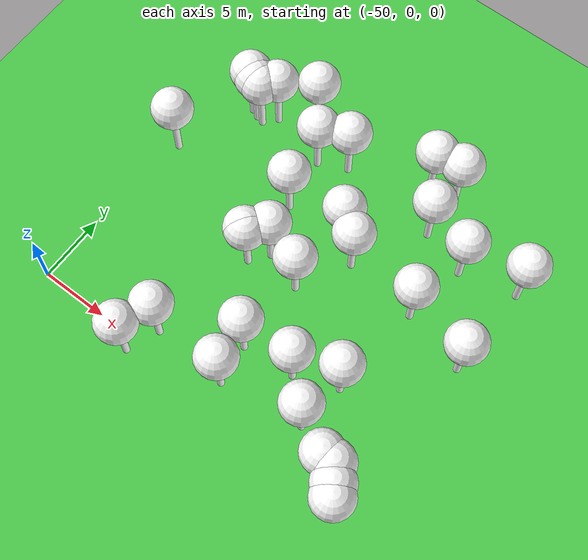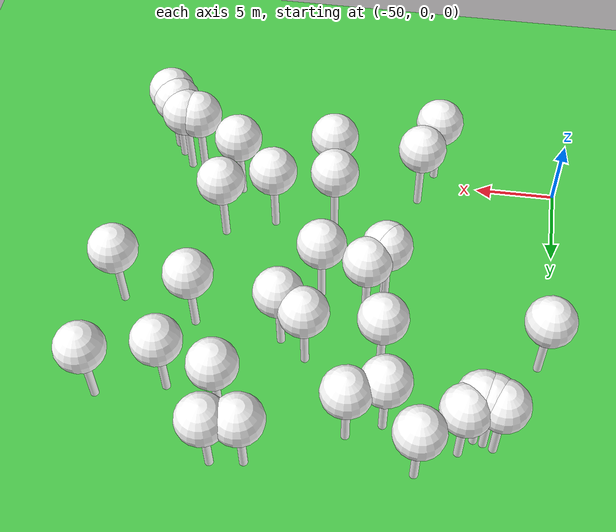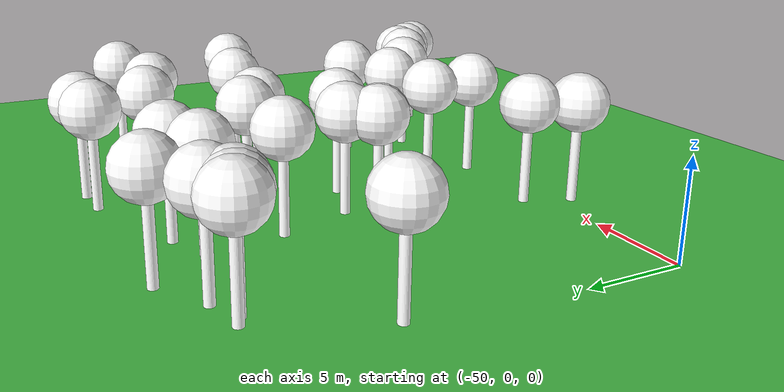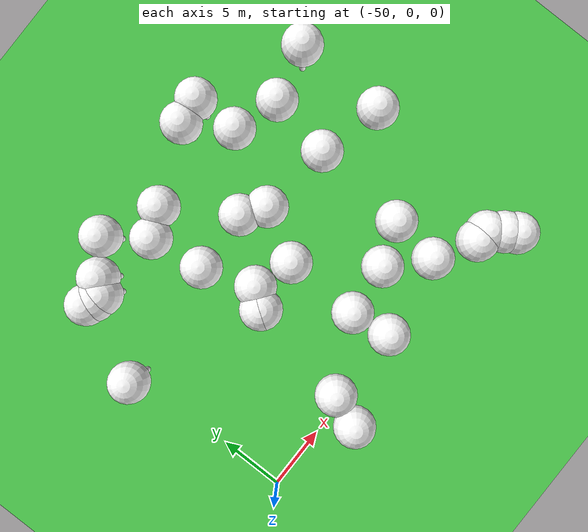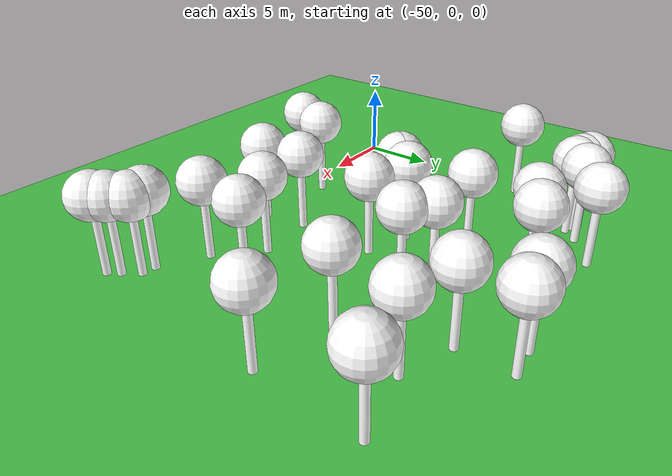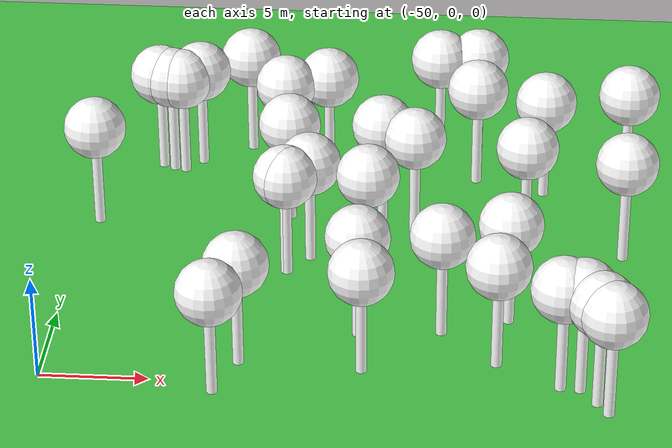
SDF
<sdf version="1.8">
 <world name="forest_world">
  <model name="tree_simple493">
   <static>1</static>
   <link name="link">
    <pose>0 0 0.1 0 -0 0</pose>
    <collision name="collision_trunk">
     <pose>0 0 2 0 -0 0</pose>
     <geometry><cylinder><radius>0.25</radius><length>4</length></cylinder></geometry>
    </collision>
    <collision name="collision_treetop">
     <pose>0 0 5.2 0 -0 0</pose>
     <geometry><sphere><radius>1.5</radius></sphere></geometry>
    </collision>
    <visual name="trunk_493">
     <pose>0 0 2 0 -0 0</pose>
     <geometry><cylinder><radius>0.25</radius><length>4</length></cylinder></geometry>
     <material>
      <ambient>0.5 0.5 0.5 1</ambient>
      <diffuse>1.0 1.0 1.0 1</diffuse>
      <specular>0.0 0.0 0.0 1</specular>
      <pbr>
       <metal>
        <albedo_map>file://textures/tree_simple_trunk.jpg</albedo_map>
        <metalness>0.0</metalness>
        <roughness>0.8</roughness>
       </metal>
      </pbr>
     </material>
    </visual>
    <visual name="treetop_493">
     <pose>0 0 5.2 0 -0 0</pose>
     <geometry><sphere><radius>1.5</radius></sphere></geometry>
     <material>
      <ambient>0.5 0.5 0.5 1</ambient>
      <diffuse>1.0 1.0 1.0 1</diffuse>
      <specular>0.0 0.0 0.0 1</specular>
      <pbr>
       <metal>
        <albedo_map>file://textures/tree_simple_treetop.jpg</albedo_map>
        <metalness>0.0</metalness>
        <roughness>0.9</roughness>
       </metal>
      </pbr>
     </material>
    </visual>
   </link>
   <pose>-30.9686104206 18.3944298941 0 0 -0 0</pose>
  </model>
  <model name="tree_simple476">
   <static>1</static>
   <link name="link">
    <pose>0 0 0.1 0 -0 0</pose>
    <collision name="collision_trunk">
     <pose>0 0 2 0 -0 0</pose>
     <geometry><cylinder><radius>0.25</radius><length>4</length></cylinder></geometry>
    </collision>
    <collision name="collision_treetop">
     <pose>0 0 5.2 0 -0 0</pose>
     <geometry><sphere><radius>1.5</radius></sphere></geometry>
    </collision>
    <visual name="trunk_476">
     <pose>0 0 2 0 -0 0</pose>
     <geometry><cylinder><radius>0.25</radius><length>4</length></cylinder></geometry>
     <material>
      <ambient>0.5 0.5 0.5 1</ambient>
      <diffuse>1.0 1.0 1.0 1</diffuse>
      <specular>0.0 0.0 0.0 1</specular>
      <pbr>
       <metal>
        <albedo_map>file://textures/tree_simple_trunk.jpg</albedo_map>
        <metalness>0.0</metalness>
        <roughness>0.8</roughness>
       </metal>
      </pbr>
     </material>
    </visual>
    <visual name="treetop_476">
     <pose>0 0 5.2 0 -0 0</pose>
     <geometry><sphere><radius>1.5</radius></sphere></geometry>
     <material>
      <ambient>0.5 0.5 0.5 1</ambient>
      <diffuse>1.0 1.0 1.0 1</diffuse>
      <specular>0.0 0.0 0.0 1</specular>
      <pbr>
       <metal>
        <albedo_map>file://textures/tree_simple_treetop.jpg</albedo_map>
        <metalness>0.0</metalness>
        <roughness>0.9</roughness>
       </metal>
      </pbr>
     </material>
    </visual>
   </link>
   <pose>-40.490555579 18.243153787 0 0 -0 0</pose>
  </model>
  <model name="tree_simple470">
   <static>1</static>
   <link name="link">
    <pose>0 0 0.1 0 -0 0</pose>
    <collision name="collision_trunk">
     <pose>0 0 2 0 -0 0</pose>
     <geometry><cylinder><radius>0.25</radius><length>4</length></cylinder></geometry>
    </collision>
    <collision name="collision_treetop">
     <pose>0 0 5.2 0 -0 0</pose>
     <geometry><sphere><radius>1.5</radius></sphere></geometry>
    </collision>
    <visual name="trunk_470">
     <pose>0 0 2 0 -0 0</pose>
     <geometry><cylinder><radius>0.25</radius><length>4</length></cylinder></geometry>
     <material>
      <ambient>0.5 0.5 0.5 1</ambient>
      <diffuse>1.0 1.0 1.0 1</diffuse>
      <specular>0.0 0.0 0.0 1</specular>
      <pbr>
       <metal>
        <albedo_map>file://textures/tree_simple_trunk.jpg</albedo_map>
        <metalness>0.0</metalness>
        <roughness>0.8</roughness>
       </metal>
      </pbr>
     </material>
    </visual>
    <visual name="treetop_470">
     <pose>0 0 5.2 0 -0 0</pose>
     <geometry><sphere><radius>1.5</radius></sphere></geometry>
     <material>
      <ambient>0.5 0.5 0.5 1</ambient>
      <diffuse>1.0 1.0 1.0 1</diffuse>
      <specular>0.0 0.0 0.0 1</specular>
      <pbr>
       <metal>
        <albedo_map>file://textures/tree_simple_treetop.jpg</albedo_map>
        <metalness>0.0</metalness>
        <roughness>0.9</roughness>
       </metal>
      </pbr>
     </material>
    </visual>
   </link>
   <pose>-42.5418923399 21.0598314505 0 0 -0 0</pose>
  </model>
  <model name="tree_simple467">
   <static>1</static>
   <link name="link">
    <pose>0 0 0.1 0 -0 0</pose>
    <collision name="collision_trunk">
     <pose>0 0 2 0 -0 0</pose>
     <geometry><cylinder><radius>0.25</radius><length>4</length></cylinder></geometry>
    </collision>
    <collision name="collision_treetop">
     <pose>0 0 5.2 0 -0 0</pose>
     <geometry><sphere><radius>1.5</radius></sphere></geometry>
    </collision>
    <visual name="trunk_467">
     <pose>0 0 2 0 -0 0</pose>
     <geometry><cylinder><radius>0.25</radius><length>4</length></cylinder></geometry>
     <material>
      <ambient>0.5 0.5 0.5 1</ambient>
      <diffuse>1.0 1.0 1.0 1</diffuse>
      <specular>0.0 0.0 0.0 1</specular>
      <pbr>
       <metal>
        <albedo_map>file://textures/tree_simple_trunk.jpg</albedo_map>
        <metalness>0.0</metalness>
        <roughness>0.8</roughness>
       </metal>
      </pbr>
     </material>
    </visual>
    <visual name="treetop_467">
     <pose>0 0 5.2 0 -0 0</pose>
     <geometry><sphere><radius>1.5</radius></sphere></geometry>
     <material>
      <ambient>0.5 0.5 0.5 1</ambient>
      <diffuse>1.0 1.0 1.0 1</diffuse>
      <specular>0.0 0.0 0.0 1</specular>
      <pbr>
       <metal>
        <albedo_map>file://textures/tree_simple_treetop.jpg</albedo_map>
        <metalness>0.0</metalness>
        <roughness>0.9</roughness>
       </metal>
      </pbr>
     </material>
    </visual>
   </link>
   <pose>-38.4435588212 19.1731926836 0 0 -0 0</pose>
  </model>
  <model name="tree_simple455">
   <static>1</static>
   <link name="link">
    <pose>0 0 0.1 0 -0 0</pose>
    <collision name="collision_trunk">
     <pose>0 0 2 0 -0 0</pose>
     <geometry><cylinder><radius>0.25</radius><length>4</length></cylinder></geometry>
    </collision>
    <collision name="collision_treetop">
     <pose>0 0 5.2 0 -0 0</pose>
     <geometry><sphere><radius>1.5</radius></sphere></geometry>
    </collision>
    <visual name="trunk_455">
     <pose>0 0 2 0 -0 0</pose>
     <geometry><cylinder><radius>0.25</radius><length>4</length></cylinder></geometry>
     <material>
      <ambient>0.5 0.5 0.5 1</ambient>
      <diffuse>1.0 1.0 1.0 1</diffuse>
      <specular>0.0 0.0 0.0 1</specular>
      <pbr>
       <metal>
        <albedo_map>file://textures/tree_simple_trunk.jpg</albedo_map>
        <metalness>0.0</metalness>
        <roughness>0.8</roughness>
       </metal>
      </pbr>
     </material>
    </visual>
    <visual name="treetop_455">
     <pose>0 0 5.2 0 -0 0</pose>
     <geometry><sphere><radius>1.5</radius></sphere></geometry>
     <material>
      <ambient>0.5 0.5 0.5 1</ambient>
      <diffuse>1.0 1.0 1.0 1</diffuse>
      <specular>0.0 0.0 0.0 1</specular>
      <pbr>
       <metal>
        <albedo_map>file://textures/tree_simple_treetop.jpg</albedo_map>
        <metalness>0.0</metalness>
        <roughness>0.9</roughness>
       </metal>
      </pbr>
     </material>
    </visual>
   </link>
   <pose>-32.1346913749 4.45623468988 0 0 -0 0</pose>
  </model>
  <model name="tree_simple448">
   <static>1</static>
   <link name="link">
    <pose>0 0 0.1 0 -0 0</pose>
    <collision name="collision_trunk">
     <pose>0 0 2 0 -0 0</pose>
     <geometry><cylinder><radius>0.25</radius><length>4</length></cylinder></geometry>
    </collision>
    <collision name="collision_treetop">
     <pose>0 0 5.2 0 -0 0</pose>
     <geometry><sphere><radius>1.5</radius></sphere></geometry>
    </collision>
    <visual name="trunk_448">
     <pose>0 0 2 0 -0 0</pose>
     <geometry><cylinder><radius>0.25</radius><length>4</length></cylinder></geometry>
     <material>
      <ambient>0.5 0.5 0.5 1</ambient>
      <diffuse>1.0 1.0 1.0 1</diffuse>
      <specular>0.0 0.0 0.0 1</specular>
      <pbr>
       <metal>
        <albedo_map>file://textures/tree_simple_trunk.jpg</albedo_map>
        <metalness>0.0</metalness>
        <roughness>0.8</roughness>
       </metal>
      </pbr>
     </material>
    </visual>
    <visual name="treetop_448">
     <pose>0 0 5.2 0 -0 0</pose>
     <geometry><sphere><radius>1.5</radius></sphere></geometry>
     <material>
      <ambient>0.5 0.5 0.5 1</ambient>
      <diffuse>1.0 1.0 1.0 1</diffuse>
      <specular>0.0 0.0 0.0 1</specular>
      <pbr>
       <metal>
        <albedo_map>file://textures/tree_simple_treetop.jpg</albedo_map>
        <metalness>0.0</metalness>
        <roughness>0.9</roughness>
       </metal>
      </pbr>
     </material>
    </visual>
   </link>
   <pose>-24.5519753109 -1.42546954192 0 0 -0 0</pose>
  </model>
  <model name="tree_simple444">
   <static>1</static>
   <link name="link">
    <pose>0 0 0.1 0 -0 0</pose>
    <collision name="collision_trunk">
     <pose>0 0 2 0 -0 0</pose>
     <geometry><cylinder><radius>0.25</radius><length>4</length></cylinder></geometry>
    </collision>
    <collision name="collision_treetop">
     <pose>0 0 5.2 0 -0 0</pose>
     <geometry><sphere><radius>1.5</radius></sphere></geometry>
    </collision>
    <visual name="trunk_444">
     <pose>0 0 2 0 -0 0</pose>
     <geometry><cylinder><radius>0.25</radius><length>4</length></cylinder></geometry>
     <material>
      <ambient>0.5 0.5 0.5 1</ambient>
      <diffuse>1.0 1.0 1.0 1</diffuse>
      <specular>0.0 0.0 0.0 1</specular>
      <pbr>
       <metal>
        <albedo_map>file://textures/tree_simple_trunk.jpg</albedo_map>
        <metalness>0.0</metalness>
        <roughness>0.8</roughness>
       </metal>
      </pbr>
     </material>
    </visual>
    <visual name="treetop_444">
     <pose>0 0 5.2 0 -0 0</pose>
     <geometry><sphere><radius>1.5</radius></sphere></geometry>
     <material>
      <ambient>0.5 0.5 0.5 1</ambient>
      <diffuse>1.0 1.0 1.0 1</diffuse>
      <specular>0.0 0.0 0.0 1</specular>
      <pbr>
       <metal>
        <albedo_map>file://textures/tree_simple_treetop.jpg</albedo_map>
        <metalness>0.0</metalness>
        <roughness>0.9</roughness>
       </metal>
      </pbr>
     </material>
    </visual>
   </link>
   <pose>-23.7375888222 11.4825776361 0 0 -0 0</pose>
  </model>
  <model name="tree_simple440">
   <static>1</static>
   <link name="link">
    <pose>0 0 0.1 0 -0 0</pose>
    <collision name="collision_trunk">
     <pose>0 0 2 0 -0 0</pose>
     <geometry><cylinder><radius>0.25</radius><length>4</length></cylinder></geometry>
    </collision>
    <collision name="collision_treetop">
     <pose>0 0 5.2 0 -0 0</pose>
     <geometry><sphere><radius>1.5</radius></sphere></geometry>
    </collision>
    <visual name="trunk_440">
     <pose>0 0 2 0 -0 0</pose>
     <geometry><cylinder><radius>0.25</radius><length>4</length></cylinder></geometry>
     <material>
      <ambient>0.5 0.5 0.5 1</ambient>
      <diffuse>1.0 1.0 1.0 1</diffuse>
      <specular>0.0 0.0 0.0 1</specular>
      <pbr>
       <metal>
        <albedo_map>file://textures/tree_simple_trunk.jpg</albedo_map>
        <metalness>0.0</metalness>
        <roughness>0.8</roughness>
       </metal>
      </pbr>
     </material>
    </visual>
    <visual name="treetop_440">
     <pose>0 0 5.2 0 -0 0</pose>
     <geometry><sphere><radius>1.5</radius></sphere></geometry>
     <material>
      <ambient>0.5 0.5 0.5 1</ambient>
      <diffuse>1.0 1.0 1.0 1</diffuse>
      <specular>0.0 0.0 0.0 1</specular>
      <pbr>
       <metal>
        <albedo_map>file://textures/tree_simple_treetop.jpg</albedo_map>
        <metalness>0.0</metalness>
        <roughness>0.9</roughness>
       </metal>
      </pbr>
     </material>
    </visual>
   </link>
   <pose>-31.0139863597 21.7755311208 0 0 -0 0</pose>
  </model>
  <model name="tree_simple437">
   <static>1</static>
   <link name="link">
    <pose>0 0 0.1 0 -0 0</pose>
    <collision name="collision_trunk">
     <pose>0 0 2 0 -0 0</pose>
     <geometry><cylinder><radius>0.25</radius><length>4</length></cylinder></geometry>
    </collision>
    <collision name="collision_treetop">
     <pose>0 0 5.2 0 -0 0</pose>
     <geometry><sphere><radius>1.5</radius></sphere></geometry>
    </collision>
    <visual name="trunk_437">
     <pose>0 0 2 0 -0 0</pose>
     <geometry><cylinder><radius>0.25</radius><length>4</length></cylinder></geometry>
     <material>
      <ambient>0.5 0.5 0.5 1</ambient>
      <diffuse>1.0 1.0 1.0 1</diffuse>
      <specular>0.0 0.0 0.0 1</specular>
      <pbr>
       <metal>
        <albedo_map>file://textures/tree_simple_trunk.jpg</albedo_map>
        <metalness>0.0</metalness>
        <roughness>0.8</roughness>
       </metal>
      </pbr>
     </material>
    </visual>
    <visual name="treetop_437">
     <pose>0 0 5.2 0 -0 0</pose>
     <geometry><sphere><radius>1.5</radius></sphere></geometry>
     <material>
      <ambient>0.5 0.5 0.5 1</ambient>
      <diffuse>1.0 1.0 1.0 1</diffuse>
      <specular>0.0 0.0 0.0 1</specular>
      <pbr>
       <metal>
        <albedo_map>file://textures/tree_simple_treetop.jpg</albedo_map>
        <metalness>0.0</metalness>
        <roughness>0.9</roughness>
       </metal>
      </pbr>
     </material>
    </visual>
   </link>
   <pose>-39.7170299969 9.24665194356 0 0 -0 0</pose>
  </model>
  <model name="tree_simple420">
   <static>1</static>
   <link name="link">
    <pose>0 0 0.1 0 -0 0</pose>
    <collision name="collision_trunk">
     <pose>0 0 2 0 -0 0</pose>
     <geometry><cylinder><radius>0.25</radius><length>4</length></cylinder></geometry>
    </collision>
    <collision name="collision_treetop">
     <pose>0 0 5.2 0 -0 0</pose>
     <geometry><sphere><radius>1.5</radius></sphere></geometry>
    </collision>
    <visual name="trunk_420">
     <pose>0 0 2 0 -0 0</pose>
     <geometry><cylinder><radius>0.25</radius><length>4</length></cylinder></geometry>
     <material>
      <ambient>0.5 0.5 0.5 1</ambient>
      <diffuse>1.0 1.0 1.0 1</diffuse>
      <specular>0.0 0.0 0.0 1</specular>
      <pbr>
       <metal>
        <albedo_map>file://textures/tree_simple_trunk.jpg</albedo_map>
        <metalness>0.0</metalness>
        <roughness>0.8</roughness>
       </metal>
      </pbr>
     </material>
    </visual>
    <visual name="treetop_420">
     <pose>0 0 5.2 0 -0 0</pose>
     <geometry><sphere><radius>1.5</radius></sphere></geometry>
     <material>
      <ambient>0.5 0.5 0.5 1</ambient>
      <diffuse>1.0 1.0 1.0 1</diffuse>
      <specular>0.0 0.0 0.0 1</specular>
      <pbr>
       <metal>
        <albedo_map>file://textures/tree_simple_treetop.jpg</albedo_map>
        <metalness>0.0</metalness>
        <roughness>0.9</roughness>
       </metal>
      </pbr>
     </material>
    </visual>
   </link>
   <pose>-46.8738530937 18.9140158148 0 0 -0 0</pose>
  </model>
  <model name="tree_simple383">
   <static>1</static>
   <link name="link">
    <pose>0 0 0.1 0 -0 0</pose>
    <collision name="collision_trunk">
     <pose>0 0 2 0 -0 0</pose>
     <geometry><cylinder><radius>0.25</radius><length>4</length></cylinder></geometry>
    </collision>
    <collision name="collision_treetop">
     <pose>0 0 5.2 0 -0 0</pose>
     <geometry><sphere><radius>1.5</radius></sphere></geometry>
    </collision>
    <visual name="trunk_383">
     <pose>0 0 2 0 -0 0</pose>
     <geometry><cylinder><radius>0.25</radius><length>4</length></cylinder></geometry>
     <material>
      <ambient>0.5 0.5 0.5 1</ambient>
      <diffuse>1.0 1.0 1.0 1</diffuse>
      <specular>0.0 0.0 0.0 1</specular>
      <pbr>
       <metal>
        <albedo_map>file://textures/tree_simple_trunk.jpg</albedo_map>
        <metalness>0.0</metalness>
        <roughness>0.8</roughness>
       </metal>
      </pbr>
     </material>
    </visual>
    <visual name="treetop_383">
     <pose>0 0 5.2 0 -0 0</pose>
     <geometry><sphere><radius>1.5</radius></sphere></geometry>
     <material>
      <ambient>0.5 0.5 0.5 1</ambient>
      <diffuse>1.0 1.0 1.0 1</diffuse>
      <specular>0.0 0.0 0.0 1</specular>
      <pbr>
       <metal>
        <albedo_map>file://textures/tree_simple_treetop.jpg</albedo_map>
        <metalness>0.0</metalness>
        <roughness>0.9</roughness>
       </metal>
      </pbr>
     </material>
    </visual>
   </link>
   <pose>-39.6589333601 9.20891740709 0 0 -0 0</pose>
  </model>
  <model name="tree_simple333">
   <static>1</static>
   <link name="link">
    <pose>0 0 0.1 0 -0 0</pose>
    <collision name="collision_trunk">
     <pose>0 0 2 0 -0 0</pose>
     <geometry><cylinder><radius>0.25</radius><length>4</length></cylinder></geometry>
    </collision>
    <collision name="collision_treetop">
     <pose>0 0 5.2 0 -0 0</pose>
     <geometry><sphere><radius>1.5</radius></sphere></geometry>
    </collision>
    <visual name="trunk_333">
     <pose>0 0 2 0 -0 0</pose>
     <geometry><cylinder><radius>0.25</radius><length>4</length></cylinder></geometry>
     <material>
      <ambient>0.5 0.5 0.5 1</ambient>
      <diffuse>1.0 1.0 1.0 1</diffuse>
      <specular>0.0 0.0 0.0 1</specular>
      <pbr>
       <metal>
        <albedo_map>file://textures/tree_simple_trunk.jpg</albedo_map>
        <metalness>0.0</metalness>
        <roughness>0.8</roughness>
       </metal>
      </pbr>
     </material>
    </visual>
    <visual name="treetop_333">
     <pose>0 0 5.2 0 -0 0</pose>
     <geometry><sphere><radius>1.5</radius></sphere></geometry>
     <material>
      <ambient>0.5 0.5 0.5 1</ambient>
      <diffuse>1.0 1.0 1.0 1</diffuse>
      <specular>0.0 0.0 0.0 1</specular>
      <pbr>
       <metal>
        <albedo_map>file://textures/tree_simple_treetop.jpg</albedo_map>
        <metalness>0.0</metalness>
        <roughness>0.9</roughness>
       </metal>
      </pbr>
     </material>
    </visual>
   </link>
   <pose>-39.9457212117 14.2708629915 0 0 -0 0</pose>
  </model>
  <model name="tree_simple289">
   <static>1</static>
   <link name="link">
    <pose>0 0 0.1 0 -0 0</pose>
    <collision name="collision_trunk">
     <pose>0 0 2 0 -0 0</pose>
     <geometry><cylinder><radius>0.25</radius><length>4</length></cylinder></geometry>
    </collision>
    <collision name="collision_treetop">
     <pose>0 0 5.2 0 -0 0</pose>
     <geometry><sphere><radius>1.5</radius></sphere></geometry>
    </collision>
    <visual name="trunk_289">
     <pose>0 0 2 0 -0 0</pose>
     <geometry><cylinder><radius>0.25</radius><length>4</length></cylinder></geometry>
     <material>
      <ambient>0.5 0.5 0.5 1</ambient>
      <diffuse>1.0 1.0 1.0 1</diffuse>
      <specular>0.0 0.0 0.0 1</specular>
      <pbr>
       <metal>
        <albedo_map>file://textures/tree_simple_trunk.jpg</albedo_map>
        <metalness>0.0</metalness>
        <roughness>0.8</roughness>
       </metal>
      </pbr>
     </material>
    </visual>
    <visual name="treetop_289">
     <pose>0 0 5.2 0 -0 0</pose>
     <geometry><sphere><radius>1.5</radius></sphere></geometry>
     <material>
      <ambient>0.5 0.5 0.5 1</ambient>
      <diffuse>1.0 1.0 1.0 1</diffuse>
      <specular>0.0 0.0 0.0 1</specular>
      <pbr>
       <metal>
        <albedo_map>file://textures/tree_simple_treetop.jpg</albedo_map>
        <metalness>0.0</metalness>
        <roughness>0.9</roughness>
       </metal>
      </pbr>
     </material>
    </visual>
   </link>
   <pose>-35.9302757768 4.10324936235 0 0 -0 0</pose>
  </model>
  <model name="tree_simple279">
   <static>1</static>
   <link name="link">
    <pose>0 0 0.1 0 -0 0</pose>
    <collision name="collision_trunk">
     <pose>0 0 2 0 -0 0</pose>
     <geometry><cylinder><radius>0.25</radius><length>4</length></cylinder></geometry>
    </collision>
    <collision name="collision_treetop">
     <pose>0 0 5.2 0 -0 0</pose>
     <geometry><sphere><radius>1.5</radius></sphere></geometry>
    </collision>
    <visual name="trunk_279">
     <pose>0 0 2 0 -0 0</pose>
     <geometry><cylinder><radius>0.25</radius><length>4</length></cylinder></geometry>
     <material>
      <ambient>0.5 0.5 0.5 1</ambient>
      <diffuse>1.0 1.0 1.0 1</diffuse>
      <specular>0.0 0.0 0.0 1</specular>
      <pbr>
       <metal>
        <albedo_map>file://textures/tree_simple_trunk.jpg</albedo_map>
        <metalness>0.0</metalness>
        <roughness>0.8</roughness>
       </metal>
      </pbr>
     </material>
    </visual>
    <visual name="treetop_279">
     <pose>0 0 5.2 0 -0 0</pose>
     <geometry><sphere><radius>1.5</radius></sphere></geometry>
     <material>
      <ambient>0.5 0.5 0.5 1</ambient>
      <diffuse>1.0 1.0 1.0 1</diffuse>
      <specular>0.0 0.0 0.0 1</specular>
      <pbr>
       <metal>
        <albedo_map>file://textures/tree_simple_treetop.jpg</albedo_map>
        <metalness>0.0</metalness>
        <roughness>0.9</roughness>
       </metal>
      </pbr>
     </material>
    </visual>
   </link>
   <pose>-25.0449823603 -0.682470499347 0 0 -0 0</pose>
  </model>
  <model name="tree_simple252">
   <static>1</static>
   <link name="link">
    <pose>0 0 0.1 0 -0 0</pose>
    <collision name="collision_trunk">
     <pose>0 0 2 0 -0 0</pose>
     <geometry><cylinder><radius>0.25</radius><length>4</length></cylinder></geometry>
    </collision>
    <collision name="collision_treetop">
     <pose>0 0 5.2 0 -0 0</pose>
     <geometry><sphere><radius>1.5</radius></sphere></geometry>
    </collision>
    <visual name="trunk_252">
     <pose>0 0 2 0 -0 0</pose>
     <geometry><cylinder><radius>0.25</radius><length>4</length></cylinder></geometry>
     <material>
      <ambient>0.5 0.5 0.5 1</ambient>
      <diffuse>1.0 1.0 1.0 1</diffuse>
      <specular>0.0 0.0 0.0 1</specular>
      <pbr>
       <metal>
        <albedo_map>file://textures/tree_simple_trunk.jpg</albedo_map>
        <metalness>0.0</metalness>
        <roughness>0.8</roughness>
       </metal>
      </pbr>
     </material>
    </visual>
    <visual name="treetop_252">
     <pose>0 0 5.2 0 -0 0</pose>
     <geometry><sphere><radius>1.5</radius></sphere></geometry>
     <material>
      <ambient>0.5 0.5 0.5 1</ambient>
      <diffuse>1.0 1.0 1.0 1</diffuse>
      <specular>0.0 0.0 0.0 1</specular>
      <pbr>
       <metal>
        <albedo_map>file://textures/tree_simple_treetop.jpg</albedo_map>
        <metalness>0.0</metalness>
        <roughness>0.9</roughness>
       </metal>
      </pbr>
     </material>
    </visual>
   </link>
   <pose>-49.2857495086 13.2768548842 0 0 -0 0</pose>
  </model>
  <model name="tree_simple245">
   <static>1</static>
   <link name="link">
    <pose>0 0 0.1 0 -0 0</pose>
    <collision name="collision_trunk">
     <pose>0 0 2 0 -0 0</pose>
     <geometry><cylinder><radius>0.25</radius><length>4</length></cylinder></geometry>
    </collision>
    <collision name="collision_treetop">
     <pose>0 0 5.2 0 -0 0</pose>
     <geometry><sphere><radius>1.5</radius></sphere></geometry>
    </collision>
    <visual name="trunk_245">
     <pose>0 0 2 0 -0 0</pose>
     <geometry><cylinder><radius>0.25</radius><length>4</length></cylinder></geometry>
     <material>
      <ambient>0.5 0.5 0.5 1</ambient>
      <diffuse>1.0 1.0 1.0 1</diffuse>
      <specular>0.0 0.0 0.0 1</specular>
      <pbr>
       <metal>
        <albedo_map>file://textures/tree_simple_trunk.jpg</albedo_map>
        <metalness>0.0</metalness>
        <roughness>0.8</roughness>
       </metal>
      </pbr>
     </material>
    </visual>
    <visual name="treetop_245">
     <pose>0 0 5.2 0 -0 0</pose>
     <geometry><sphere><radius>1.5</radius></sphere></geometry>
     <material>
      <ambient>0.5 0.5 0.5 1</ambient>
      <diffuse>1.0 1.0 1.0 1</diffuse>
      <specular>0.0 0.0 0.0 1</specular>
      <pbr>
       <metal>
        <albedo_map>file://textures/tree_simple_treetop.jpg</albedo_map>
        <metalness>0.0</metalness>
        <roughness>0.9</roughness>
       </metal>
      </pbr>
     </material>
    </visual>
   </link>
   <pose>-25.7973722527 0.315231770046 0 0 -0 0</pose>
  </model>
  <model name="tree_simple231">
   <static>1</static>
   <link name="link">
    <pose>0 0 0.1 0 -0 0</pose>
    <collision name="collision_trunk">
     <pose>0 0 2 0 -0 0</pose>
     <geometry><cylinder><radius>0.25</radius><length>4</length></cylinder></geometry>
    </collision>
    <collision name="collision_treetop">
     <pose>0 0 5.2 0 -0 0</pose>
     <geometry><sphere><radius>1.5</radius></sphere></geometry>
    </collision>
    <visual name="trunk_231">
     <pose>0 0 2 0 -0 0</pose>
     <geometry><cylinder><radius>0.25</radius><length>4</length></cylinder></geometry>
     <material>
      <ambient>0.5 0.5 0.5 1</ambient>
      <diffuse>1.0 1.0 1.0 1</diffuse>
      <specular>0.0 0.0 0.0 1</specular>
      <pbr>
       <metal>
        <albedo_map>file://textures/tree_simple_trunk.jpg</albedo_map>
        <metalness>0.0</metalness>
        <roughness>0.8</roughness>
       </metal>
      </pbr>
     </material>
    </visual>
    <visual name="treetop_231">
     <pose>0 0 5.2 0 -0 0</pose>
     <geometry><sphere><radius>1.5</radius></sphere></geometry>
     <material>
      <ambient>0.5 0.5 0.5 1</ambient>
      <diffuse>1.0 1.0 1.0 1</diffuse>
      <specular>0.0 0.0 0.0 1</specular>
      <pbr>
       <metal>
        <albedo_map>file://textures/tree_simple_treetop.jpg</albedo_map>
        <metalness>0.0</metalness>
        <roughness>0.9</roughness>
       </metal>
      </pbr>
     </material>
    </visual>
   </link>
   <pose>-35.8338732543 9.59486776234 0 0 -0 0</pose>
  </model>
  <model name="tree_simple228">
   <static>1</static>
   <link name="link">
    <pose>0 0 0.1 0 -0 0</pose>
    <collision name="collision_trunk">
     <pose>0 0 2 0 -0 0</pose>
     <geometry><cylinder><radius>0.25</radius><length>4</length></cylinder></geometry>
    </collision>
    <collision name="collision_treetop">
     <pose>0 0 5.2 0 -0 0</pose>
     <geometry><sphere><radius>1.5</radius></sphere></geometry>
    </collision>
    <visual name="trunk_228">
     <pose>0 0 2 0 -0 0</pose>
     <geometry><cylinder><radius>0.25</radius><length>4</length></cylinder></geometry>
     <material>
      <ambient>0.5 0.5 0.5 1</ambient>
      <diffuse>1.0 1.0 1.0 1</diffuse>
      <specular>0.0 0.0 0.0 1</specular>
      <pbr>
       <metal>
        <albedo_map>file://textures/tree_simple_trunk.jpg</albedo_map>
        <metalness>0.0</metalness>
        <roughness>0.8</roughness>
       </metal>
      </pbr>
     </material>
    </visual>
    <visual name="treetop_228">
     <pose>0 0 5.2 0 -0 0</pose>
     <geometry><sphere><radius>1.5</radius></sphere></geometry>
     <material>
      <ambient>0.5 0.5 0.5 1</ambient>
      <diffuse>1.0 1.0 1.0 1</diffuse>
      <specular>0.0 0.0 0.0 1</specular>
      <pbr>
       <metal>
        <albedo_map>file://textures/tree_simple_treetop.jpg</albedo_map>
        <metalness>0.0</metalness>
        <roughness>0.9</roughness>
       </metal>
      </pbr>
     </material>
    </visual>
   </link>
   <pose>-28.4416918888 12.679152397 0 0 -0 0</pose>
  </model>
  <model name="tree_simple218">
   <static>1</static>
   <link name="link">
    <pose>0 0 0.1 0 -0 0</pose>
    <collision name="collision_trunk">
     <pose>0 0 2 0 -0 0</pose>
     <geometry><cylinder><radius>0.25</radius><length>4</length></cylinder></geometry>
    </collision>
    <collision name="collision_treetop">
     <pose>0 0 5.2 0 -0 0</pose>
     <geometry><sphere><radius>1.5</radius></sphere></geometry>
    </collision>
    <visual name="trunk_218">
     <pose>0 0 2 0 -0 0</pose>
     <geometry><cylinder><radius>0.25</radius><length>4</length></cylinder></geometry>
     <material>
      <ambient>0.5 0.5 0.5 1</ambient>
      <diffuse>1.0 1.0 1.0 1</diffuse>
      <specular>0.0 0.0 0.0 1</specular>
      <pbr>
       <metal>
        <albedo_map>file://textures/tree_simple_trunk.jpg</albedo_map>
        <metalness>0.0</metalness>
        <roughness>0.8</roughness>
       </metal>
      </pbr>
     </material>
    </visual>
    <visual name="treetop_218">
     <pose>0 0 5.2 0 -0 0</pose>
     <geometry><sphere><radius>1.5</radius></sphere></geometry>
     <material>
      <ambient>0.5 0.5 0.5 1</ambient>
      <diffuse>1.0 1.0 1.0 1</diffuse>
      <specular>0.0 0.0 0.0 1</specular>
      <pbr>
       <metal>
        <albedo_map>file://textures/tree_simple_treetop.jpg</albedo_map>
        <metalness>0.0</metalness>
        <roughness>0.9</roughness>
       </metal>
      </pbr>
     </material>
    </visual>
   </link>
   <pose>-35.4441673734 14.4296379782 0 0 -0 0</pose>
  </model>
  <model name="tree_simple209">
   <static>1</static>
   <link name="link">
    <pose>0 0 0.1 0 -0 0</pose>
    <collision name="collision_trunk">
     <pose>0 0 2 0 -0 0</pose>
     <geometry><cylinder><radius>0.25</radius><length>4</length></cylinder></geometry>
    </collision>
    <collision name="collision_treetop">
     <pose>0 0 5.2 0 -0 0</pose>
     <geometry><sphere><radius>1.5</radius></sphere></geometry>
    </collision>
    <visual name="trunk_209">
     <pose>0 0 2 0 -0 0</pose>
     <geometry><cylinder><radius>0.25</radius><length>4</length></cylinder></geometry>
     <material>
      <ambient>0.5 0.5 0.5 1</ambient>
      <diffuse>1.0 1.0 1.0 1</diffuse>
      <specular>0.0 0.0 0.0 1</specular>
      <pbr>
       <metal>
        <albedo_map>file://textures/tree_simple_trunk.jpg</albedo_map>
        <metalness>0.0</metalness>
        <roughness>0.8</roughness>
       </metal>
      </pbr>
     </material>
    </visual>
    <visual name="treetop_209">
     <pose>0 0 5.2 0 -0 0</pose>
     <geometry><sphere><radius>1.5</radius></sphere></geometry>
     <material>
      <ambient>0.5 0.5 0.5 1</ambient>
      <diffuse>1.0 1.0 1.0 1</diffuse>
      <specular>0.0 0.0 0.0 1</specular>
      <pbr>
       <metal>
        <albedo_map>file://textures/tree_simple_treetop.jpg</albedo_map>
        <metalness>0.0</metalness>
        <roughness>0.9</roughness>
       </metal>
      </pbr>
     </material>
    </visual>
   </link>
   <pose>-33.8233046725 13.2827932197 0 0 -0 0</pose>
  </model>
  <model name="tree_simple199">
   <static>1</static>
   <link name="link">
    <pose>0 0 0.1 0 -0 0</pose>
    <collision name="collision_trunk">
     <pose>0 0 2 0 -0 0</pose>
     <geometry><cylinder><radius>0.25</radius><length>4</length></cylinder></geometry>
    </collision>
    <collision name="collision_treetop">
     <pose>0 0 5.2 0 -0 0</pose>
     <geometry><sphere><radius>1.5</radius></sphere></geometry>
    </collision>
    <visual name="trunk_199">
     <pose>0 0 2 0 -0 0</pose>
     <geometry><cylinder><radius>0.25</radius><length>4</length></cylinder></geometry>
     <material>
      <ambient>0.5 0.5 0.5 1</ambient>
      <diffuse>1.0 1.0 1.0 1</diffuse>
      <specular>0.0 0.0 0.0 1</specular>
      <pbr>
       <metal>
        <albedo_map>file://textures/tree_simple_trunk.jpg</albedo_map>
        <metalness>0.0</metalness>
        <roughness>0.8</roughness>
       </metal>
      </pbr>
     </material>
    </visual>
    <visual name="treetop_199">
     <pose>0 0 5.2 0 -0 0</pose>
     <geometry><sphere><radius>1.5</radius></sphere></geometry>
     <material>
      <ambient>0.5 0.5 0.5 1</ambient>
      <diffuse>1.0 1.0 1.0 1</diffuse>
      <specular>0.0 0.0 0.0 1</specular>
      <pbr>
       <metal>
        <albedo_map>file://textures/tree_simple_treetop.jpg</albedo_map>
        <metalness>0.0</metalness>
        <roughness>0.9</roughness>
       </metal>
      </pbr>
     </material>
    </visual>
   </link>
   <pose>-38.6601694544 10.5136228042 0 0 -0 0</pose>
  </model>
  <model name="tree_simple162">
   <static>1</static>
   <link name="link">
    <pose>0 0 0.1 0 -0 0</pose>
    <collision name="collision_trunk">
     <pose>0 0 2 0 -0 0</pose>
     <geometry><cylinder><radius>0.25</radius><length>4</length></cylinder></geometry>
    </collision>
    <collision name="collision_treetop">
     <pose>0 0 5.2 0 -0 0</pose>
     <geometry><sphere><radius>1.5</radius></sphere></geometry>
    </collision>
    <visual name="trunk_162">
     <pose>0 0 2 0 -0 0</pose>
     <geometry><cylinder><radius>0.25</radius><length>4</length></cylinder></geometry>
     <material>
      <ambient>0.5 0.5 0.5 1</ambient>
      <diffuse>1.0 1.0 1.0 1</diffuse>
      <specular>0.0 0.0 0.0 1</specular>
      <pbr>
       <metal>
        <albedo_map>file://textures/tree_simple_trunk.jpg</albedo_map>
        <metalness>0.0</metalness>
        <roughness>0.8</roughness>
       </metal>
      </pbr>
     </material>
    </visual>
    <visual name="treetop_162">
     <pose>0 0 5.2 0 -0 0</pose>
     <geometry><sphere><radius>1.5</radius></sphere></geometry>
     <material>
      <ambient>0.5 0.5 0.5 1</ambient>
      <diffuse>1.0 1.0 1.0 1</diffuse>
      <specular>0.0 0.0 0.0 1</specular>
      <pbr>
       <metal>
        <albedo_map>file://textures/tree_simple_treetop.jpg</albedo_map>
        <metalness>0.0</metalness>
        <roughness>0.9</roughness>
       </metal>
      </pbr>
     </material>
    </visual>
   </link>
   <pose>-29.0785466271 5.63251358266 0 0 -0 0</pose>
  </model>
  <model name="tree_simple135">
   <static>1</static>
   <link name="link">
    <pose>0 0 0.1 0 -0 0</pose>
    <collision name="collision_trunk">
     <pose>0 0 2 0 -0 0</pose>
     <geometry><cylinder><radius>0.25</radius><length>4</length></cylinder></geometry>
    </collision>
    <collision name="collision_treetop">
     <pose>0 0 5.2 0 -0 0</pose>
     <geometry><sphere><radius>1.5</radius></sphere></geometry>
    </collision>
    <visual name="trunk_135">
     <pose>0 0 2 0 -0 0</pose>
     <geometry><cylinder><radius>0.25</radius><length>4</length></cylinder></geometry>
     <material>
      <ambient>0.5 0.5 0.5 1</ambient>
      <diffuse>1.0 1.0 1.0 1</diffuse>
      <specular>0.0 0.0 0.0 1</specular>
      <pbr>
       <metal>
        <albedo_map>file://textures/tree_simple_trunk.jpg</albedo_map>
        <metalness>0.0</metalness>
        <roughness>0.8</roughness>
       </metal>
      </pbr>
     </material>
    </visual>
    <visual name="treetop_135">
     <pose>0 0 5.2 0 -0 0</pose>
     <geometry><sphere><radius>1.5</radius></sphere></geometry>
     <material>
      <ambient>0.5 0.5 0.5 1</ambient>
      <diffuse>1.0 1.0 1.0 1</diffuse>
      <specular>0.0 0.0 0.0 1</specular>
      <pbr>
       <metal>
        <albedo_map>file://textures/tree_simple_treetop.jpg</albedo_map>
        <metalness>0.0</metalness>
        <roughness>0.9</roughness>
       </metal>
      </pbr>
     </material>
    </visual>
   </link>
   <pose>-29.5483415339 2.06641345063 0 0 -0 0</pose>
  </model>
  <model name="tree_simple127">
   <static>1</static>
   <link name="link">
    <pose>0 0 0.1 0 -0 0</pose>
    <collision name="collision_trunk">
     <pose>0 0 2 0 -0 0</pose>
     <geometry><cylinder><radius>0.25</radius><length>4</length></cylinder></geometry>
    </collision>
    <collision name="collision_treetop">
     <pose>0 0 5.2 0 -0 0</pose>
     <geometry><sphere><radius>1.5</radius></sphere></geometry>
    </collision>
    <visual name="trunk_127">
     <pose>0 0 2 0 -0 0</pose>
     <geometry><cylinder><radius>0.25</radius><length>4</length></cylinder></geometry>
     <material>
      <ambient>0.5 0.5 0.5 1</ambient>
      <diffuse>1.0 1.0 1.0 1</diffuse>
      <specular>0.0 0.0 0.0 1</specular>
      <pbr>
       <metal>
        <albedo_map>file://textures/tree_simple_trunk.jpg</albedo_map>
        <metalness>0.0</metalness>
        <roughness>0.8</roughness>
       </metal>
      </pbr>
     </material>
    </visual>
    <visual name="treetop_127">
     <pose>0 0 5.2 0 -0 0</pose>
     <geometry><sphere><radius>1.5</radius></sphere></geometry>
     <material>
      <ambient>0.5 0.5 0.5 1</ambient>
      <diffuse>1.0 1.0 1.0 1</diffuse>
      <specular>0.0 0.0 0.0 1</specular>
      <pbr>
       <metal>
        <albedo_map>file://textures/tree_simple_treetop.jpg</albedo_map>
        <metalness>0.0</metalness>
        <roughness>0.9</roughness>
       </metal>
      </pbr>
     </material>
    </visual>
   </link>
   <pose>-45.7202624904 18.511982554 0 0 -0 0</pose>
  </model>
  <model name="tree_simple122">
   <static>1</static>
   <link name="link">
    <pose>0 0 0.1 0 -0 0</pose>
    <collision name="collision_trunk">
     <pose>0 0 2 0 -0 0</pose>
     <geometry><cylinder><radius>0.25</radius><length>4</length></cylinder></geometry>
    </collision>
    <collision name="collision_treetop">
     <pose>0 0 5.2 0 -0 0</pose>
     <geometry><sphere><radius>1.5</radius></sphere></geometry>
    </collision>
    <visual name="trunk_122">
     <pose>0 0 2 0 -0 0</pose>
     <geometry><cylinder><radius>0.25</radius><length>4</length></cylinder></geometry>
     <material>
      <ambient>0.5 0.5 0.5 1</ambient>
      <diffuse>1.0 1.0 1.0 1</diffuse>
      <specular>0.0 0.0 0.0 1</specular>
      <pbr>
       <metal>
        <albedo_map>file://textures/tree_simple_trunk.jpg</albedo_map>
        <metalness>0.0</metalness>
        <roughness>0.8</roughness>
       </metal>
      </pbr>
     </material>
    </visual>
    <visual name="treetop_122">
     <pose>0 0 5.2 0 -0 0</pose>
     <geometry><sphere><radius>1.5</radius></sphere></geometry>
     <material>
      <ambient>0.5 0.5 0.5 1</ambient>
      <diffuse>1.0 1.0 1.0 1</diffuse>
      <specular>0.0 0.0 0.0 1</specular>
      <pbr>
       <metal>
        <albedo_map>file://textures/tree_simple_treetop.jpg</albedo_map>
        <metalness>0.0</metalness>
        <roughness>0.9</roughness>
       </metal>
      </pbr>
     </material>
    </visual>
   </link>
   <pose>-44.9070413792 19.4157710588 0 0 -0 0</pose>
  </model>
  <model name="tree_simple121">
   <static>1</static>
   <link name="link">
    <pose>0 0 0.1 0 -0 0</pose>
    <collision name="collision_trunk">
     <pose>0 0 2 0 -0 0</pose>
     <geometry><cylinder><radius>0.25</radius><length>4</length></cylinder></geometry>
    </collision>
    <collision name="collision_treetop">
     <pose>0 0 5.2 0 -0 0</pose>
     <geometry><sphere><radius>1.5</radius></sphere></geometry>
    </collision>
    <visual name="trunk_121">
     <pose>0 0 2 0 -0 0</pose>
     <geometry><cylinder><radius>0.25</radius><length>4</length></cylinder></geometry>
     <material>
      <ambient>0.5 0.5 0.5 1</ambient>
      <diffuse>1.0 1.0 1.0 1</diffuse>
      <specular>0.0 0.0 0.0 1</specular>
      <pbr>
       <metal>
        <albedo_map>file://textures/tree_simple_trunk.jpg</albedo_map>
        <metalness>0.0</metalness>
        <roughness>0.8</roughness>
       </metal>
      </pbr>
     </material>
    </visual>
    <visual name="treetop_121">
     <pose>0 0 5.2 0 -0 0</pose>
     <geometry><sphere><radius>1.5</radius></sphere></geometry>
     <material>
      <ambient>0.5 0.5 0.5 1</ambient>
      <diffuse>1.0 1.0 1.0 1</diffuse>
      <specular>0.0 0.0 0.0 1</specular>
      <pbr>
       <metal>
        <albedo_map>file://textures/tree_simple_treetop.jpg</albedo_map>
        <metalness>0.0</metalness>
        <roughness>0.9</roughness>
       </metal>
      </pbr>
     </material>
    </visual>
   </link>
   <pose>-26.6760124136 0.407106369334 0 0 -0 0</pose>
  </model>
  <model name="tree_simple119">
   <static>1</static>
   <link name="link">
    <pose>0 0 0.1 0 -0 0</pose>
    <collision name="collision_trunk">
     <pose>0 0 2 0 -0 0</pose>
     <geometry><cylinder><radius>0.25</radius><length>4</length></cylinder></geometry>
    </collision>
    <collision name="collision_treetop">
     <pose>0 0 5.2 0 -0 0</pose>
     <geometry><sphere><radius>1.5</radius></sphere></geometry>
    </collision>
    <visual name="trunk_119">
     <pose>0 0 2 0 -0 0</pose>
     <geometry><cylinder><radius>0.25</radius><length>4</length></cylinder></geometry>
     <material>
      <ambient>0.5 0.5 0.5 1</ambient>
      <diffuse>1.0 1.0 1.0 1</diffuse>
      <specular>0.0 0.0 0.0 1</specular>
      <pbr>
       <metal>
        <albedo_map>file://textures/tree_simple_trunk.jpg</albedo_map>
        <metalness>0.0</metalness>
        <roughness>0.8</roughness>
       </metal>
      </pbr>
     </material>
    </visual>
    <visual name="treetop_119">
     <pose>0 0 5.2 0 -0 0</pose>
     <geometry><sphere><radius>1.5</radius></sphere></geometry>
     <material>
      <ambient>0.5 0.5 0.5 1</ambient>
      <diffuse>1.0 1.0 1.0 1</diffuse>
      <specular>0.0 0.0 0.0 1</specular>
      <pbr>
       <metal>
        <albedo_map>file://textures/tree_simple_treetop.jpg</albedo_map>
        <metalness>0.0</metalness>
        <roughness>0.9</roughness>
       </metal>
      </pbr>
     </material>
    </visual>
   </link>
   <pose>-27.5998375986 17.3076325805 0 0 -0 0</pose>
  </model>
  <model name="tree_simple117">
   <static>1</static>
   <link name="link">
    <pose>0 0 0.1 0 -0 0</pose>
    <collision name="collision_trunk">
     <pose>0 0 2 0 -0 0</pose>
     <geometry><cylinder><radius>0.25</radius><length>4</length></cylinder></geometry>
    </collision>
    <collision name="collision_treetop">
     <pose>0 0 5.2 0 -0 0</pose>
     <geometry><sphere><radius>1.5</radius></sphere></geometry>
    </collision>
    <visual name="trunk_117">
     <pose>0 0 2 0 -0 0</pose>
     <geometry><cylinder><radius>0.25</radius><length>4</length></cylinder></geometry>
     <material>
      <ambient>0.5 0.5 0.5 1</ambient>
      <diffuse>1.0 1.0 1.0 1</diffuse>
      <specular>0.0 0.0 0.0 1</specular>
      <pbr>
       <metal>
        <albedo_map>file://textures/tree_simple_trunk.jpg</albedo_map>
        <metalness>0.0</metalness>
        <roughness>0.8</roughness>
       </metal>
      </pbr>
     </material>
    </visual>
    <visual name="treetop_117">
     <pose>0 0 5.2 0 -0 0</pose>
     <geometry><sphere><radius>1.5</radius></sphere></geometry>
     <material>
      <ambient>0.5 0.5 0.5 1</ambient>
      <diffuse>1.0 1.0 1.0 1</diffuse>
      <specular>0.0 0.0 0.0 1</specular>
      <pbr>
       <metal>
        <albedo_map>file://textures/tree_simple_treetop.jpg</albedo_map>
        <metalness>0.0</metalness>
        <roughness>0.9</roughness>
       </metal>
      </pbr>
     </material>
    </visual>
   </link>
   <pose>-46.2827238601 18.6501285005 0 0 -0 0</pose>
  </model>
  <model name="tree_simple105">
   <static>1</static>
   <link name="link">
    <pose>0 0 0.1 0 -0 0</pose>
    <collision name="collision_trunk">
     <pose>0 0 2 0 -0 0</pose>
     <geometry><cylinder><radius>0.25</radius><length>4</length></cylinder></geometry>
    </collision>
    <collision name="collision_treetop">
     <pose>0 0 5.2 0 -0 0</pose>
     <geometry><sphere><radius>1.5</radius></sphere></geometry>
    </collision>
    <visual name="trunk_105">
     <pose>0 0 2 0 -0 0</pose>
     <geometry><cylinder><radius>0.25</radius><length>4</length></cylinder></geometry>
     <material>
      <ambient>0.5 0.5 0.5 1</ambient>
      <diffuse>1.0 1.0 1.0 1</diffuse>
      <specular>0.0 0.0 0.0 1</specular>
      <pbr>
       <metal>
        <albedo_map>file://textures/tree_simple_trunk.jpg</albedo_map>
        <metalness>0.0</metalness>
        <roughness>0.8</roughness>
       </metal>
      </pbr>
     </material>
    </visual>
    <visual name="treetop_105">
     <pose>0 0 5.2 0 -0 0</pose>
     <geometry><sphere><radius>1.5</radius></sphere></geometry>
     <material>
      <ambient>0.5 0.5 0.5 1</ambient>
      <diffuse>1.0 1.0 1.0 1</diffuse>
      <specular>0.0 0.0 0.0 1</specular>
      <pbr>
       <metal>
        <albedo_map>file://textures/tree_simple_treetop.jpg</albedo_map>
        <metalness>0.0</metalness>
        <roughness>0.9</roughness>
       </metal>
      </pbr>
     </material>
    </visual>
   </link>
   <pose>-41.1351668554 1.47782508111 0 0 -0 0</pose>
  </model>
  <model name="tree_simple103">
   <static>1</static>
   <link name="link">
    <pose>0 0 0.1 0 -0 0</pose>
    <collision name="collision_trunk">
     <pose>0 0 2 0 -0 0</pose>
     <geometry><cylinder><radius>0.25</radius><length>4</length></cylinder></geometry>
    </collision>
    <collision name="collision_treetop">
     <pose>0 0 5.2 0 -0 0</pose>
     <geometry><sphere><radius>1.5</radius></sphere></geometry>
    </collision>
    <visual name="trunk_103">
     <pose>0 0 2 0 -0 0</pose>
     <geometry><cylinder><radius>0.25</radius><length>4</length></cylinder></geometry>
     <material>
      <ambient>0.5 0.5 0.5 1</ambient>
      <diffuse>1.0 1.0 1.0 1</diffuse>
      <specular>0.0 0.0 0.0 1</specular>
      <pbr>
       <metal>
        <albedo_map>file://textures/tree_simple_trunk.jpg</albedo_map>
        <metalness>0.0</metalness>
        <roughness>0.8</roughness>
       </metal>
      </pbr>
     </material>
    </visual>
    <visual name="treetop_103">
     <pose>0 0 5.2 0 -0 0</pose>
     <geometry><sphere><radius>1.5</radius></sphere></geometry>
     <material>
      <ambient>0.5 0.5 0.5 1</ambient>
      <diffuse>1.0 1.0 1.0 1</diffuse>
      <specular>0.0 0.0 0.0 1</specular>
      <pbr>
       <metal>
        <albedo_map>file://textures/tree_simple_treetop.jpg</albedo_map>
        <metalness>0.0</metalness>
        <roughness>0.9</roughness>
       </metal>
      </pbr>
     </material>
    </visual>
   </link>
   <pose>-23.5128318618 18.2920552876 0 0 -0 0</pose>
  </model>
  <model name="tree_simple100">
   <static>1</static>
   <link name="link">
    <pose>0 0 0.1 0 -0 0</pose>
    <collision name="collision_trunk">
     <pose>0 0 2 0 -0 0</pose>
     <geometry><cylinder><radius>0.25</radius><length>4</length></cylinder></geometry>
    </collision>
    <collision name="collision_treetop">
     <pose>0 0 5.2 0 -0 0</pose>
     <geometry><sphere><radius>1.5</radius></sphere></geometry>
    </collision>
    <visual name="trunk_100">
     <pose>0 0 2 0 -0 0</pose>
     <geometry><cylinder><radius>0.25</radius><length>4</length></cylinder></geometry>
     <material>
      <ambient>0.5 0.5 0.5 1</ambient>
      <diffuse>1.0 1.0 1.0 1</diffuse>
      <specular>0.0 0.0 0.0 1</specular>
      <pbr>
       <metal>
        <albedo_map>file://textures/tree_simple_trunk.jpg</albedo_map>
        <metalness>0.0</metalness>
        <roughness>0.8</roughness>
       </metal>
      </pbr>
     </material>
    </visual>
    <visual name="treetop_100">
     <pose>0 0 5.2 0 -0 0</pose>
     <geometry><sphere><radius>1.5</radius></sphere></geometry>
     <material>
      <ambient>0.5 0.5 0.5 1</ambient>
      <diffuse>1.0 1.0 1.0 1</diffuse>
      <specular>0.0 0.0 0.0 1</specular>
      <pbr>
       <metal>
        <albedo_map>file://textures/tree_simple_treetop.jpg</albedo_map>
        <metalness>0.0</metalness>
        <roughness>0.9</roughness>
       </metal>
      </pbr>
     </material>
    </visual>
   </link>
   <pose>-42.0523955646 -0.870595497769 0 0 -0 0</pose>
  </model>
  <model name="tree_simple43">
   <static>1</static>
   <link name="link">
    <pose>0 0 0.1 0 -0 0</pose>
    <collision name="collision_trunk">
     <pose>0 0 2 0 -0 0</pose>
     <geometry><cylinder><radius>0.25</radius><length>4</length></cylinder></geometry>
    </collision>
    <collision name="collision_treetop">
     <pose>0 0 5.2 0 -0 0</pose>
     <geometry><sphere><radius>1.5</radius></sphere></geometry>
    </collision>
    <visual name="trunk_43">
     <pose>0 0 2 0 -0 0</pose>
     <geometry><cylinder><radius>0.25</radius><length>4</length></cylinder></geometry>
     <material>
      <ambient>0.5 0.5 0.5 1</ambient>
      <diffuse>1.0 1.0 1.0 1</diffuse>
      <specular>0.0 0.0 0.0 1</specular>
      <pbr>
       <metal>
        <albedo_map>file://textures/tree_simple_trunk.jpg</albedo_map>
        <metalness>0.0</metalness>
        <roughness>0.8</roughness>
       </metal>
      </pbr>
     </material>
    </visual>
    <visual name="treetop_43">
     <pose>0 0 5.2 0 -0 0</pose>
     <geometry><sphere><radius>1.5</radius></sphere></geometry>
     <material>
      <ambient>0.5 0.5 0.5 1</ambient>
      <diffuse>1.0 1.0 1.0 1</diffuse>
      <specular>0.0 0.0 0.0 1</specular>
      <pbr>
       <metal>
        <albedo_map>file://textures/tree_simple_treetop.jpg</albedo_map>
        <metalness>0.0</metalness>
        <roughness>0.9</roughness>
       </metal>
      </pbr>
     </material>
    </visual>
   </link>
   <pose>-32.9489924766 21.5371657104 0 0 -0 0</pose>
  </model>
  <model name="tree_simple30">
   <static>1</static>
   <link name="link">
    <pose>0 0 0.1 0 -0 0</pose>
    <collision name="collision_trunk">
     <pose>0 0 2 0 -0 0</pose>
     <geometry><cylinder><radius>0.25</radius><length>4</length></cylinder></geometry>
    </collision>
    <collision name="collision_treetop">
     <pose>0 0 5.2 0 -0 0</pose>
     <geometry><sphere><radius>1.5</radius></sphere></geometry>
    </collision>
    <visual name="trunk_30">
     <pose>0 0 2 0 -0 0</pose>
     <geometry><cylinder><radius>0.25</radius><length>4</length></cylinder></geometry>
     <material>
      <ambient>0.5 0.5 0.5 1</ambient>
      <diffuse>1.0 1.0 1.0 1</diffuse>
      <specular>0.0 0.0 0.0 1</specular>
      <pbr>
       <metal>
        <albedo_map>file://textures/tree_simple_trunk.jpg</albedo_map>
        <metalness>0.0</metalness>
        <roughness>0.8</roughness>
       </metal>
      </pbr>
     </material>
    </visual>
    <visual name="treetop_30">
     <pose>0 0 5.2 0 -0 0</pose>
     <geometry><sphere><radius>1.5</radius></sphere></geometry>
     <material>
      <ambient>0.5 0.5 0.5 1</ambient>
      <diffuse>1.0 1.0 1.0 1</diffuse>
      <specular>0.0 0.0 0.0 1</specular>
      <pbr>
       <metal>
        <albedo_map>file://textures/tree_simple_treetop.jpg</albedo_map>
        <metalness>0.0</metalness>
        <roughness>0.9</roughness>
       </metal>
      </pbr>
     </material>
    </visual>
   </link>
   <pose>-35.5727327485 1.19199426463 0 0 -0 0</pose>
  </model>
  <model name="ground_plane">
   <static>true</static>
   <link name="link">
    <collision name="collision">
     <geometry><plane><normal>0 0 1</normal><size>250 250</size></plane></geometry>
     <surface><friction><ode><mu>1</mu><mu2>1</mu2></ode></friction></surface>
    </collision>
    <visual name="grass">
     <cast_shadows>false</cast_shadows>
     <geometry><mesh><uri>file://textures/grass_plane.dae</uri><scale>1 1 1</scale></mesh></geometry>
     <material>
      <ambient>0.2 0.6 0.2 1</ambient>
      <diffuse>0.3 0.8 0.3 1</diffuse>
      <specular>0.1 0.1 0.1 1</specular>
      <pbr>
       <metal>
        <albedo_map>file://textures/grass_seamless.jpg</albedo_map>
        <metalness>0.0</metalness>
        <roughness>0.9</roughness>
       </metal>
      </pbr>
     </material>
    </visual>
   </link>
  </model>
 </world>
</sdf>
